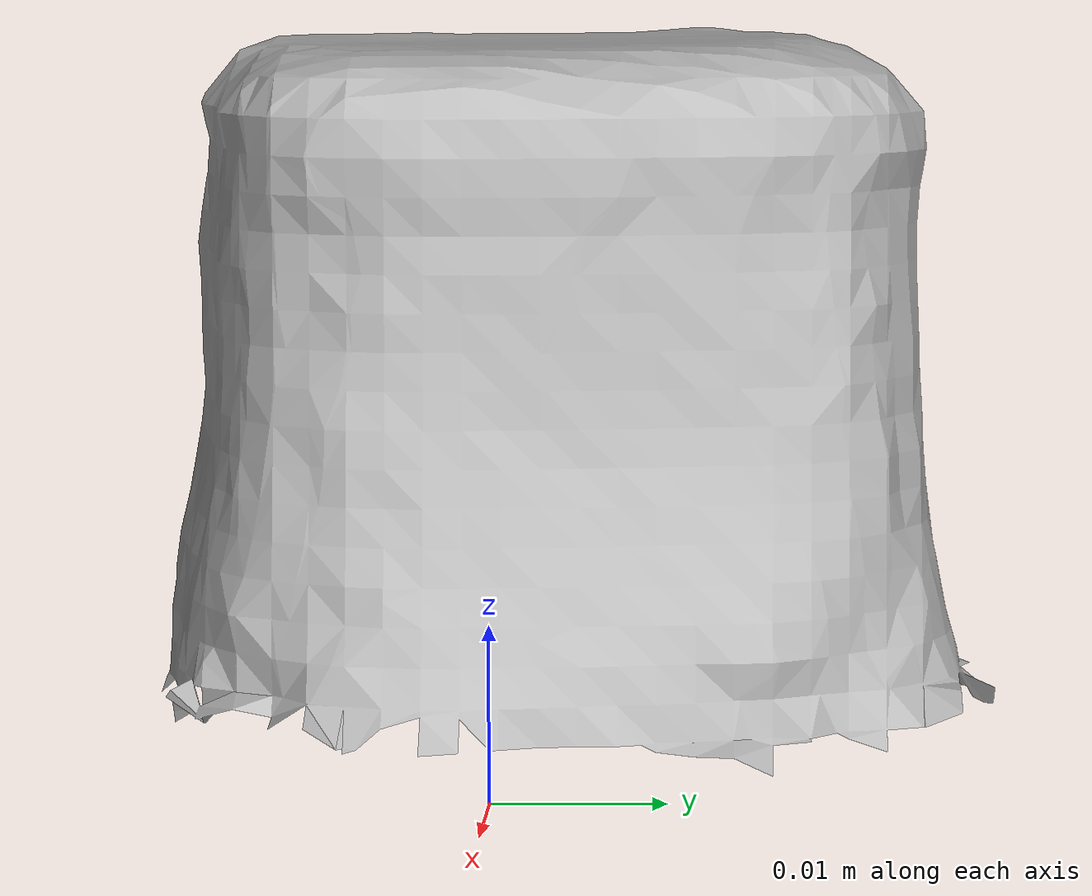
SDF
<?xml version='1.0'?>
<sdf version="1.4">
  <model name="k_lego_duplo">
    <static>false</static>
    <link name="link">
      <inertial>
        <pose>0.004827813203101929 0.003785804593448126 0.025619740966347303 2.2585056564707005 -1.4886234419038795 1.6497792725335583</pose>
        <mass>4.4787304029569685e-05</mass>
        <inertia>
          <ixx>9.441841399540032e-09</ixx>
          <ixy>-9.16428649588896e-25</ixy>
          <ixz>3.6510933513373793e-25</ixz>
          <iyy>6.8753519638634545e-09</iyy>
          <iyz>-7.627552370169457e-25</iyz>
          <izz>6.722066032014776e-09</izz>
        </inertia>
      </inertial>
      <collision name="collision">
        <geometry>
          <mesh>
            <!-- Use a downsampled mesh for collisions -->
            <uri>model://073-k_lego_duplo/downsampled.obj</uri>
	        </mesh>
        </geometry>
        <surface>
      </surface>
      </collision>
      <visual name="visual">
        <geometry>
          <mesh>
            <uri>model://073-k_lego_duplo/tsdf/textured.obj</uri>
	        </mesh>
        </geometry>
        <material>
          <script>
            <uri>model://073-k_lego_duplo/k_lego_duplo.material</uri>
            <name>k_lego_duplo</name>
          </script>
        </material>
      </visual>
    </link>
  </model>
</sdf>
